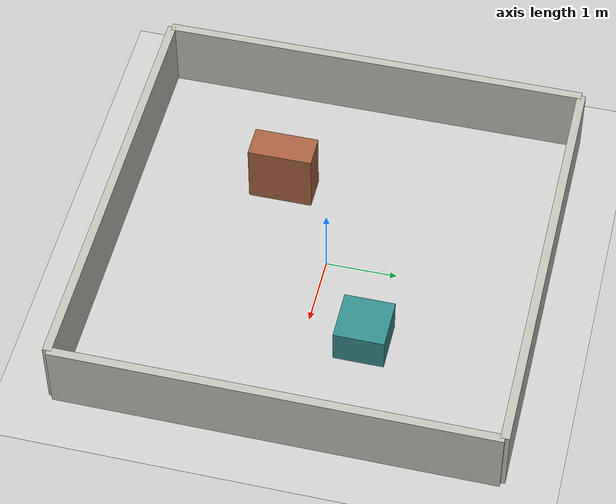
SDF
<?xml version="1.0"?>
<sdf version="1.6">
  <world name="simple_room">
    <include>
      <uri>model://ground_plane</uri>
    </include>

    <include>
      <uri>model://sun</uri>
    </include>

    <scene>
      <shadows>false</shadows>
      <ambient>0.45 0.45 0.45 1</ambient>
      <background>0.7 0.78 0.86 1</background>
    </scene>

    <gui fullscreen="0">
      <camera name="user_camera">
        <pose frame="">0 -0.2 8.5 0 1.45 1.57</pose>
        <view_controller>orbit</view_controller>
        <projection_type>perspective</projection_type>
      </camera>
    </gui>

    <physics type="ode">
      <real_time_update_rate>1000.0</real_time_update_rate>
      <max_step_size>0.001</max_step_size>
      <real_time_factor>1</real_time_factor>
    </physics>

    <model name="north_wall">
      <static>true</static>
      <pose>0 3 0.5 0 0 0</pose>
      <link name="link">
        <collision name="collision">
          <geometry>
            <box>
              <size>6 0.12 1</size>
            </box>
          </geometry>
        </collision>
        <visual name="visual">
          <geometry>
            <box>
              <size>6 0.12 1</size>
            </box>
          </geometry>
          <material>
            <ambient>0.75 0.75 0.72 1</ambient>
            <diffuse>0.75 0.75 0.72 1</diffuse>
          </material>
        </visual>
      </link>
    </model>

    <model name="south_wall">
      <static>true</static>
      <pose>0 -3 0.5 0 0 0</pose>
      <link name="link">
        <collision name="collision">
          <geometry>
            <box>
              <size>6 0.12 1</size>
            </box>
          </geometry>
        </collision>
        <visual name="visual">
          <geometry>
            <box>
              <size>6 0.12 1</size>
            </box>
          </geometry>
          <material>
            <ambient>0.75 0.75 0.72 1</ambient>
            <diffuse>0.75 0.75 0.72 1</diffuse>
          </material>
        </visual>
      </link>
    </model>

    <model name="east_wall">
      <static>true</static>
      <pose>3 0 0.5 0 0 0</pose>
      <link name="link">
        <collision name="collision">
          <geometry>
            <box>
              <size>0.12 6 1</size>
            </box>
          </geometry>
        </collision>
        <visual name="visual">
          <geometry>
            <box>
              <size>0.12 6 1</size>
            </box>
          </geometry>
          <material>
            <ambient>0.75 0.75 0.72 1</ambient>
            <diffuse>0.75 0.75 0.72 1</diffuse>
          </material>
        </visual>
      </link>
    </model>

    <model name="west_wall">
      <static>true</static>
      <pose>-3 0 0.5 0 0 0</pose>
      <link name="link">
        <collision name="collision">
          <geometry>
            <box>
              <size>0.12 6 1</size>
            </box>
          </geometry>
        </collision>
        <visual name="visual">
          <geometry>
            <box>
              <size>0.12 6 1</size>
            </box>
          </geometry>
          <material>
            <ambient>0.75 0.75 0.72 1</ambient>
            <diffuse>0.75 0.75 0.72 1</diffuse>
          </material>
        </visual>
      </link>
    </model>

    <model name="low_box">
      <static>true</static>
      <pose>1.2 0.8 0.25 0 0 0</pose>
      <link name="link">
        <collision name="collision">
          <geometry>
            <box>
              <size>0.7 0.7 0.5</size>
            </box>
          </geometry>
        </collision>
        <visual name="visual">
          <geometry>
            <box>
              <size>0.7 0.7 0.5</size>
            </box>
          </geometry>
          <material>
            <ambient>0.2 0.55 0.55 1</ambient>
            <diffuse>0.2 0.55 0.55 1</diffuse>
          </material>
        </visual>
      </link>
    </model>

    <model name="tall_box">
      <static>true</static>
      <pose>-1.2 -0.9 0.45 0 0 0</pose>
      <link name="link">
        <collision name="collision">
          <geometry>
            <box>
              <size>0.45 0.9 0.9</size>
            </box>
          </geometry>
        </collision>
        <visual name="visual">
          <geometry>
            <box>
              <size>0.45 0.9 0.9</size>
            </box>
          </geometry>
          <material>
            <ambient>0.65 0.38 0.24 1</ambient>
            <diffuse>0.65 0.38 0.24 1</diffuse>
          </material>
        </visual>
      </link>
    </model>
  </world>
</sdf>
